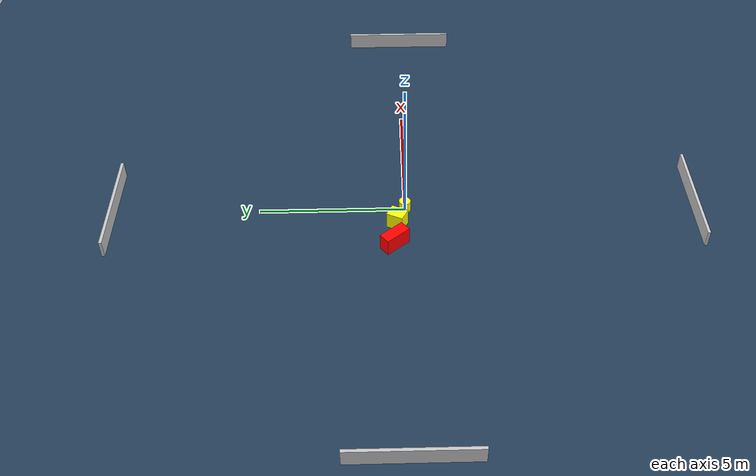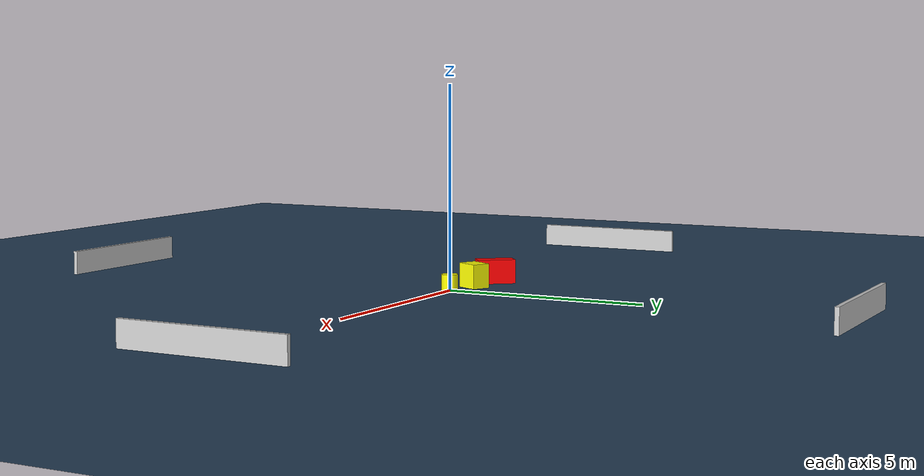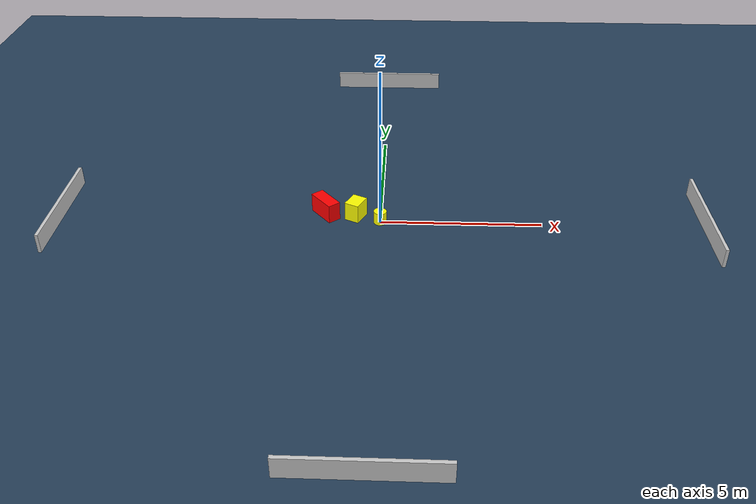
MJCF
<?xml version="1.0" ?>
<mujoco model="generated_environment">
  <option timestep="0.01" integrator="RK4" cone="elliptic"/>
  <default>
    <geom density="1"/>
  </default>
  <asset>
    <texture builtin="gradient" height="3072" name="skybox" rgb1="0.3 0.5 0.7" rgb2="0 0 0" type="skybox" width="512"/>
    <texture builtin="checker" height="300" name="groundplane" rgb1="0.2 0.3 0.4" rgb2="0.1 0.2 0.3" type="2d" width="300"/>
    <material name="groundplane" reflectance="0.2" texrepeat="5 5" texture="groundplane"/>
  </asset>
  <worldbody>
    <light dir="0 0 -1" directional="true" pos="0 0 1.5"/>
    <geom condim="3" friction="0.5 0.005 0.001" material="groundplane" name="floor" pos="0 0 0" size="0 0 0.05" type="plane"/>
    <body name="walls">
      <geom name="wall_1" condim="4" pos="-10.0 0.0 0.3" rgba="0.800000011920929 0.800000011920929 0.800000011920929 1.0" size="0.05 2.0 0.3" type="box"/>
      <geom name="wall_2" condim="4" pos="10.0 0.0 0.3" rgba="0.800000011920929 0.800000011920929 0.800000011920929 1.0" size="0.05 2.0 0.3" type="box"/>
      <geom name="wall_3" condim="4" pos="0.0 -10.0 0.3" rgba="0.800000011920929 0.800000011920929 0.800000011920929 1.0" size="2.0 0.05 0.3" type="box"/>
      <geom name="wall_4" condim="4" pos="0.0 10.0 0.3" rgba="0.800000011920929 0.800000011920929 0.800000011920929 1.0" size="2.0 0.05 0.3" type="box"/>
    </body>
    <body name="robot">
      <joint name="joint_x" type="slide" pos="0 0 0" axis="1 0 0"/>
      <joint name="joint_y" type="slide" pos="0 0 0" axis="0 1 0"/>
      <geom name="robot" type="cylinder" pos="0.0 0.0 0.2" size="0.2 0.2 0.0" mass="5.0" friction="1.0 0.005 0.0001" condim="4" rgba="1.0 1.0 0.0 1.0"/>
    </body>
    <body name="obstacle_1_movable">
      <geom name="obstacle_1_movable" condim="4" pos="-0.765136379036172 0.2733925761974223 0.3" euler="0 0 63.68857219189519" friction="0.0 0.005 0.001" rgba="1.0 1.0 0.0 1.0" size="0.29079713210433966 0.23105194018277037 0.3" type="box" mass="0.1"/>
      <joint type="free"/>
    </body>
    <body name="obstacle_2_static">
      <geom name="obstacle_2_static" condim="4" pos="-1.7167880791201395 0.3733315834330351 0.3" euler="0 0 309.72120317526674" friction="0.0 0.005 0.001" rgba="1.0 0.0 0.0 1.0" size="0.47159654366873954 0.2054826034943864 0.3" type="box"/>
    </body>
  </worldbody>
  <actuator>
    <motor name="actuator_x" joint="joint_x" gear="1" ctrlrange="-1 1"/>
    <motor name="actuator_y" joint="joint_y" gear="1" ctrlrange="-1 1"/>
  </actuator>
</mujoco>
